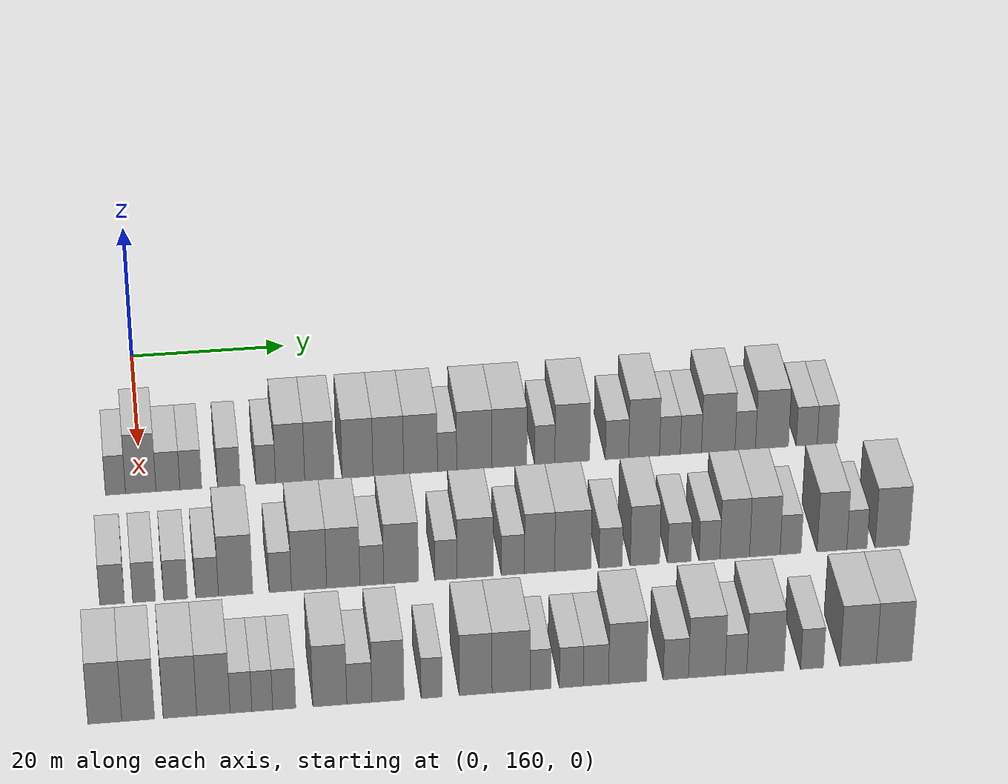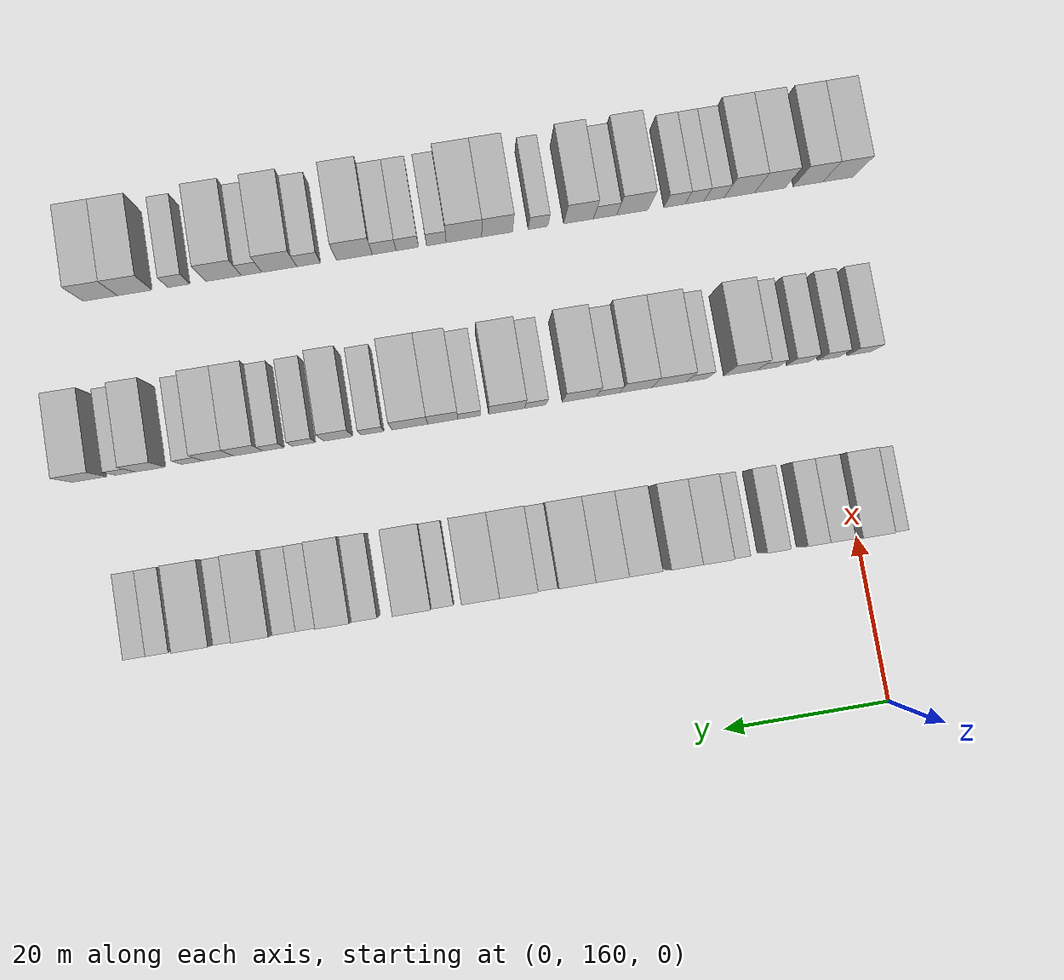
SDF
<sdf version="1.6">
 <world name="default">
  <model name="building_99">
   <static>1</static>
   <pose>25.0000 156.7002 0 0.000000 0.000000 0.000000</pose>
   <link name="link">
    <pose>0 0 3.00 0 0 0</pose>
    <collision name="collision"><geometry><box><size>10.0000 2.5004 6.0000</size></box></geometry></collision>
    <visual name="visual">
     <cast_shadows>0</cast_shadows>
     <geometry><box><size>10.0000 2.5004 6.0000</size></box></geometry>
     <material>
      <script>
       <uri>model://HANNAS_wall/materials/scripts</uri>
       <uri>model://HANNAS_wall/materials/textures</uri>
       <name>vrc/HANNAS_wall</name>
      </script>
     </material>
    </visual>
   </link>
  </model>
  <model name="building_100">
   <static>1</static>
   <pose>25.0000 159.8559 0 0.000000 0.000000 0.000000</pose>
   <link name="link">
    <pose>0 0 4.50 0 0 0</pose>
    <collision name="collision"><geometry><box><size>10.0000 3.8112 9.0000</size></box></geometry></collision>
    <visual name="visual">
     <cast_shadows>0</cast_shadows>
     <geometry><box><size>10.0000 3.8112 9.0000</size></box></geometry>
     <material>
      <script>
       <uri>model://HANNAS_wall/materials/scripts</uri>
       <uri>model://HANNAS_wall/materials/textures</uri>
       <name>vrc/HANNAS_wall</name>
      </script>
     </material>
    </visual>
   </link>
  </model>
  <model name="building_101">
   <static>1</static>
   <pose>25.0000 163.2554 0 0.000000 0.000000 0.000000</pose>
   <link name="link">
    <pose>0 0 3.00 0 0 0</pose>
    <collision name="collision"><geometry><box><size>10.0000 2.9878 6.0000</size></box></geometry></collision>
    <visual name="visual">
     <cast_shadows>0</cast_shadows>
     <geometry><box><size>10.0000 2.9878 6.0000</size></box></geometry>
     <material>
      <script>
       <uri>model://HANNAS_wall/materials/scripts</uri>
       <uri>model://HANNAS_wall/materials/textures</uri>
       <name>vrc/HANNAS_wall</name>
      </script>
     </material>
    </visual>
   </link>
  </model>
  <model name="building_102">
   <static>1</static>
   <pose>25.0000 166.1116 0 0.000000 0.000000 0.000000</pose>
   <link name="link">
    <pose>0 0 3.00 0 0 0</pose>
    <collision name="collision"><geometry><box><size>10.0000 2.7245 6.0000</size></box></geometry></collision>
    <visual name="visual">
     <cast_shadows>0</cast_shadows>
     <geometry><box><size>10.0000 2.7245 6.0000</size></box></geometry>
     <material>
      <script>
       <uri>model://HANNAS_wall/materials/scripts</uri>
       <uri>model://HANNAS_wall/materials/textures</uri>
       <name>vrc/HANNAS_wall</name>
      </script>
     </material>
    </visual>
   </link>
  </model>
  <model name="building_103">
   <static>1</static>
   <pose>25.0000 170.8859 0 0.000000 0.000000 0.000000</pose>
   <link name="link">
    <pose>0 0 3.00 0 0 0</pose>
    <collision name="collision"><geometry><box><size>10.0000 2.8243 6.0000</size></box></geometry></collision>
    <visual name="visual">
     <cast_shadows>0</cast_shadows>
     <geometry><box><size>10.0000 2.8243 6.0000</size></box></geometry>
     <material>
      <script>
       <uri>model://HANNAS_wall/materials/scripts</uri>
       <uri>model://HANNAS_wall/materials/textures</uri>
       <name>vrc/HANNAS_wall</name>
      </script>
     </material>
    </visual>
   </link>
  </model>
  <model name="building_104">
   <static>1</static>
   <pose>25.0000 175.5269 0 0.000000 0.000000 0.000000</pose>
   <link name="link">
    <pose>0 0 3.00 0 0 0</pose>
    <collision name="collision"><geometry><box><size>10.0000 2.4576 6.0000</size></box></geometry></collision>
    <visual name="visual">
     <cast_shadows>0</cast_shadows>
     <geometry><box><size>10.0000 2.4576 6.0000</size></box></geometry>
     <material>
      <script>
       <uri>model://HANNAS_wall/materials/scripts</uri>
       <uri>model://HANNAS_wall/materials/textures</uri>
       <name>vrc/HANNAS_wall</name>
      </script>
     </material>
    </visual>
   </link>
  </model>
  <model name="building_105">
   <static>1</static>
   <pose>25.0000 178.5931 0 0.000000 0.000000 0.000000</pose>
   <link name="link">
    <pose>0 0 4.50 0 0 0</pose>
    <collision name="collision"><geometry><box><size>10.0000 3.6749 9.0000</size></box></geometry></collision>
    <visual name="visual">
     <cast_shadows>0</cast_shadows>
     <geometry><box><size>10.0000 3.6749 9.0000</size></box></geometry>
     <material>
      <script>
       <uri>model://HANNAS_wall/materials/scripts</uri>
       <uri>model://HANNAS_wall/materials/textures</uri>
       <name>vrc/HANNAS_wall</name>
      </script>
     </material>
    </visual>
   </link>
  </model>
  <model name="building_106">
   <static>1</static>
   <pose>25.0000 182.2861 0 0.000000 0.000000 0.000000</pose>
   <link name="link">
    <pose>0 0 4.50 0 0 0</pose>
    <collision name="collision"><geometry><box><size>10.0000 3.7111 9.0000</size></box></geometry></collision>
    <visual name="visual">
     <cast_shadows>0</cast_shadows>
     <geometry><box><size>10.0000 3.7111 9.0000</size></box></geometry>
     <material>
      <script>
       <uri>model://HANNAS_wall/materials/scripts</uri>
       <uri>model://HANNAS_wall/materials/textures</uri>
       <name>vrc/HANNAS_wall</name>
      </script>
     </material>
    </visual>
   </link>
  </model>
  <model name="building_107">
   <static>1</static>
   <pose>25.0000 187.0937 0 0.000000 0.000000 0.000000</pose>
   <link name="link">
    <pose>0 0 4.50 0 0 0</pose>
    <collision name="collision"><geometry><box><size>10.0000 3.9042 9.0000</size></box></geometry></collision>
    <visual name="visual">
     <cast_shadows>0</cast_shadows>
     <geometry><box><size>10.0000 3.9042 9.0000</size></box></geometry>
     <material>
      <script>
       <uri>model://HANNAS_wall/materials/scripts</uri>
       <uri>model://HANNAS_wall/materials/textures</uri>
       <name>vrc/HANNAS_wall</name>
      </script>
     </material>
    </visual>
   </link>
  </model>
  <model name="building_108">
   <static>1</static>
   <pose>25.0000 190.9851 0 0.000000 0.000000 0.000000</pose>
   <link name="link">
    <pose>0 0 4.50 0 0 0</pose>
    <collision name="collision"><geometry><box><size>10.0000 3.8786 9.0000</size></box></geometry></collision>
    <visual name="visual">
     <cast_shadows>0</cast_shadows>
     <geometry><box><size>10.0000 3.8786 9.0000</size></box></geometry>
     <material>
      <script>
       <uri>model://HANNAS_wall/materials/scripts</uri>
       <uri>model://HANNAS_wall/materials/textures</uri>
       <name>vrc/HANNAS_wall</name>
      </script>
     </material>
    </visual>
   </link>
  </model>
  <model name="building_109">
   <static>1</static>
   <pose>25.0000 195.0670 0 0.000000 0.000000 0.000000</pose>
   <link name="link">
    <pose>0 0 4.50 0 0 0</pose>
    <collision name="collision"><geometry><box><size>10.0000 4.2852 9.0000</size></box></geometry></collision>
    <visual name="visual">
     <cast_shadows>0</cast_shadows>
     <geometry><box><size>10.0000 4.2852 9.0000</size></box></geometry>
     <material>
      <script>
       <uri>model://HANNAS_wall/materials/scripts</uri>
       <uri>model://HANNAS_wall/materials/textures</uri>
       <name>vrc/HANNAS_wall</name>
      </script>
     </material>
    </visual>
   </link>
  </model>
  <model name="building_110">
   <static>1</static>
   <pose>25.0000 198.4293 0 0.000000 0.000000 0.000000</pose>
   <link name="link">
    <pose>0 0 3.00 0 0 0</pose>
    <collision name="collision"><geometry><box><size>10.0000 2.4394 6.0000</size></box></geometry></collision>
    <visual name="visual">
     <cast_shadows>0</cast_shadows>
     <geometry><box><size>10.0000 2.4394 6.0000</size></box></geometry>
     <material>
      <script>
       <uri>model://HANNAS_wall/materials/scripts</uri>
       <uri>model://HANNAS_wall/materials/textures</uri>
       <name>vrc/HANNAS_wall</name>
      </script>
     </material>
    </visual>
   </link>
  </model>
  <model name="building_111">
   <static>1</static>
   <pose>25.0000 201.8912 0 0.000000 0.000000 0.000000</pose>
   <link name="link">
    <pose>0 0 4.50 0 0 0</pose>
    <collision name="collision"><geometry><box><size>10.0000 4.4845 9.0000</size></box></geometry></collision>
    <visual name="visual">
     <cast_shadows>0</cast_shadows>
     <geometry><box><size>10.0000 4.4845 9.0000</size></box></geometry>
     <material>
      <script>
       <uri>model://HANNAS_wall/materials/scripts</uri>
       <uri>model://HANNAS_wall/materials/textures</uri>
       <name>vrc/HANNAS_wall</name>
      </script>
     </material>
    </visual>
   </link>
  </model>
  <model name="building_112">
   <static>1</static>
   <pose>25.0000 206.3494 0 0.000000 0.000000 0.000000</pose>
   <link name="link">
    <pose>0 0 4.50 0 0 0</pose>
    <collision name="collision"><geometry><box><size>10.0000 4.4319 9.0000</size></box></geometry></collision>
    <visual name="visual">
     <cast_shadows>0</cast_shadows>
     <geometry><box><size>10.0000 4.4319 9.0000</size></box></geometry>
     <material>
      <script>
       <uri>model://HANNAS_wall/materials/scripts</uri>
       <uri>model://HANNAS_wall/materials/textures</uri>
       <name>vrc/HANNAS_wall</name>
      </script>
     </material>
    </visual>
   </link>
  </model>
  <model name="building_113">
   <static>1</static>
   <pose>25.0000 210.8501 0 0.000000 0.000000 0.000000</pose>
   <link name="link">
    <pose>0 0 3.00 0 0 0</pose>
    <collision name="collision"><geometry><box><size>10.0000 2.5695 6.0000</size></box></geometry></collision>
    <visual name="visual">
     <cast_shadows>0</cast_shadows>
     <geometry><box><size>10.0000 2.5695 6.0000</size></box></geometry>
     <material>
      <script>
       <uri>model://HANNAS_wall/materials/scripts</uri>
       <uri>model://HANNAS_wall/materials/textures</uri>
       <name>vrc/HANNAS_wall</name>
      </script>
     </material>
    </visual>
   </link>
  </model>
  <model name="building_114">
   <static>1</static>
   <pose>25.0000 214.3579 0 0.000000 0.000000 0.000000</pose>
   <link name="link">
    <pose>0 0 4.50 0 0 0</pose>
    <collision name="collision"><geometry><box><size>10.0000 4.4461 9.0000</size></box></geometry></collision>
    <visual name="visual">
     <cast_shadows>0</cast_shadows>
     <geometry><box><size>10.0000 4.4461 9.0000</size></box></geometry>
     <material>
      <script>
       <uri>model://HANNAS_wall/materials/scripts</uri>
       <uri>model://HANNAS_wall/materials/textures</uri>
       <name>vrc/HANNAS_wall</name>
      </script>
     </material>
    </visual>
   </link>
  </model>
  <model name="building_115">
   <static>1</static>
   <pose>25.0000 220.0796 0 0.000000 0.000000 0.000000</pose>
   <link name="link">
    <pose>0 0 3.00 0 0 0</pose>
    <collision name="collision"><geometry><box><size>10.0000 2.9972 6.0000</size></box></geometry></collision>
    <visual name="visual">
     <cast_shadows>0</cast_shadows>
     <geometry><box><size>10.0000 2.9972 6.0000</size></box></geometry>
     <material>
      <script>
       <uri>model://HANNAS_wall/materials/scripts</uri>
       <uri>model://HANNAS_wall/materials/textures</uri>
       <name>vrc/HANNAS_wall</name>
      </script>
     </material>
    </visual>
   </link>
  </model>
  <model name="building_116">
   <static>1</static>
   <pose>25.0000 223.5503 0 0.000000 0.000000 0.000000</pose>
   <link name="link">
    <pose>0 0 4.50 0 0 0</pose>
    <collision name="collision"><geometry><box><size>10.0000 3.9442 9.0000</size></box></geometry></collision>
    <visual name="visual">
     <cast_shadows>0</cast_shadows>
     <geometry><box><size>10.0000 3.9442 9.0000</size></box></geometry>
     <material>
      <script>
       <uri>model://HANNAS_wall/materials/scripts</uri>
       <uri>model://HANNAS_wall/materials/textures</uri>
       <name>vrc/HANNAS_wall</name>
      </script>
     </material>
    </visual>
   </link>
  </model>
  <model name="building_117">
   <static>1</static>
   <pose>25.0000 226.8522 0 0.000000 0.000000 0.000000</pose>
   <link name="link">
    <pose>0 0 3.00 0 0 0</pose>
    <collision name="collision"><geometry><box><size>10.0000 2.6597 6.0000</size></box></geometry></collision>
    <visual name="visual">
     <cast_shadows>0</cast_shadows>
     <geometry><box><size>10.0000 2.6597 6.0000</size></box></geometry>
     <material>
      <script>
       <uri>model://HANNAS_wall/materials/scripts</uri>
       <uri>model://HANNAS_wall/materials/textures</uri>
       <name>vrc/HANNAS_wall</name>
      </script>
     </material>
    </visual>
   </link>
  </model>
  <model name="building_118">
   <static>1</static>
   <pose>25.0000 229.5475 0 0.000000 0.000000 0.000000</pose>
   <link name="link">
    <pose>0 0 3.00 0 0 0</pose>
    <collision name="collision"><geometry><box><size>10.0000 2.7309 6.0000</size></box></geometry></collision>
    <visual name="visual">
     <cast_shadows>0</cast_shadows>
     <geometry><box><size>10.0000 2.7309 6.0000</size></box></geometry>
     <material>
      <script>
       <uri>model://HANNAS_wall/materials/scripts</uri>
       <uri>model://HANNAS_wall/materials/textures</uri>
       <name>vrc/HANNAS_wall</name>
      </script>
     </material>
    </visual>
   </link>
  </model>
  <model name="building_119">
   <static>1</static>
   <pose>25.0000 233.0678 0 0.000000 0.000000 0.000000</pose>
   <link name="link">
    <pose>0 0 4.50 0 0 0</pose>
    <collision name="collision"><geometry><box><size>10.0000 4.3097 9.0000</size></box></geometry></collision>
    <visual name="visual">
     <cast_shadows>0</cast_shadows>
     <geometry><box><size>10.0000 4.3097 9.0000</size></box></geometry>
     <material>
      <script>
       <uri>model://HANNAS_wall/materials/scripts</uri>
       <uri>model://HANNAS_wall/materials/textures</uri>
       <name>vrc/HANNAS_wall</name>
      </script>
     </material>
    </visual>
   </link>
  </model>
  <model name="building_120">
   <static>1</static>
   <pose>25.0000 236.5413 0 0.000000 0.000000 0.000000</pose>
   <link name="link">
    <pose>0 0 3.00 0 0 0</pose>
    <collision name="collision"><geometry><box><size>10.0000 2.6375 6.0000</size></box></geometry></collision>
    <visual name="visual">
     <cast_shadows>0</cast_shadows>
     <geometry><box><size>10.0000 2.6375 6.0000</size></box></geometry>
     <material>
      <script>
       <uri>model://HANNAS_wall/materials/scripts</uri>
       <uri>model://HANNAS_wall/materials/textures</uri>
       <name>vrc/HANNAS_wall</name>
      </script>
     </material>
    </visual>
   </link>
  </model>
  <model name="building_121">
   <static>1</static>
   <pose>25.0000 239.9875 0 0.000000 0.000000 0.000000</pose>
   <link name="link">
    <pose>0 0 4.50 0 0 0</pose>
    <collision name="collision"><geometry><box><size>10.0000 4.2548 9.0000</size></box></geometry></collision>
    <visual name="visual">
     <cast_shadows>0</cast_shadows>
     <geometry><box><size>10.0000 4.2548 9.0000</size></box></geometry>
     <material>
      <script>
       <uri>model://HANNAS_wall/materials/scripts</uri>
       <uri>model://HANNAS_wall/materials/textures</uri>
       <name>vrc/HANNAS_wall</name>
      </script>
     </material>
    </visual>
   </link>
  </model>
  <model name="building_122">
   <static>1</static>
   <pose>25.0000 244.4672 0 0.000000 0.000000 0.000000</pose>
   <link name="link">
    <pose>0 0 3.00 0 0 0</pose>
    <collision name="collision"><geometry><box><size>10.0000 2.7047 6.0000</size></box></geometry></collision>
    <visual name="visual">
     <cast_shadows>0</cast_shadows>
     <geometry><box><size>10.0000 2.7047 6.0000</size></box></geometry>
     <material>
      <script>
       <uri>model://HANNAS_wall/materials/scripts</uri>
       <uri>model://HANNAS_wall/materials/textures</uri>
       <name>vrc/HANNAS_wall</name>
      </script>
     </material>
    </visual>
   </link>
  </model>
  <model name="building_123">
   <static>1</static>
   <pose>25.0000 247.1309 0 0.000000 0.000000 0.000000</pose>
   <link name="link">
    <pose>0 0 3.00 0 0 0</pose>
    <collision name="collision"><geometry><box><size>10.0000 2.6227 6.0000</size></box></geometry></collision>
    <visual name="visual">
     <cast_shadows>0</cast_shadows>
     <geometry><box><size>10.0000 2.6227 6.0000</size></box></geometry>
     <material>
      <script>
       <uri>model://HANNAS_wall/materials/scripts</uri>
       <uri>model://HANNAS_wall/materials/textures</uri>
       <name>vrc/HANNAS_wall</name>
      </script>
     </material>
    </visual>
   </link>
  </model>
  <model name="building_219">
   <static>1</static>
   <pose>47.0000 155.4432 0 0.000000 0.000000 0.000000</pose>
   <link name="link">
    <pose>0 0 3.00 0 0 0</pose>
    <collision name="collision"><geometry><box><size>10.0000 2.9692 6.0000</size></box></geometry></collision>
    <visual name="visual">
     <cast_shadows>0</cast_shadows>
     <geometry><box><size>10.0000 2.9692 6.0000</size></box></geometry>
     <material>
      <script>
       <uri>model://HANNAS_wall/materials/scripts</uri>
       <uri>model://HANNAS_wall/materials/textures</uri>
       <name>vrc/HANNAS_wall</name>
      </script>
     </material>
    </visual>
   </link>
  </model>
  <model name="building_220">
   <static>1</static>
   <pose>47.0000 159.2951 0 0.000000 0.000000 0.000000</pose>
   <link name="link">
    <pose>0 0 3.00 0 0 0</pose>
    <collision name="collision"><geometry><box><size>10.0000 2.7347 6.0000</size></box></geometry></collision>
    <visual name="visual">
     <cast_shadows>0</cast_shadows>
     <geometry><box><size>10.0000 2.7347 6.0000</size></box></geometry>
     <material>
      <script>
       <uri>model://HANNAS_wall/materials/scripts</uri>
       <uri>model://HANNAS_wall/materials/textures</uri>
       <name>vrc/HANNAS_wall</name>
      </script>
     </material>
    </visual>
   </link>
  </model>
  <model name="building_221">
   <static>1</static>
   <pose>47.0000 163.0942 0 0.000000 0.000000 0.000000</pose>
   <link name="link">
    <pose>0 0 3.00 0 0 0</pose>
    <collision name="collision"><geometry><box><size>10.0000 2.8635 6.0000</size></box></geometry></collision>
    <visual name="visual">
     <cast_shadows>0</cast_shadows>
     <geometry><box><size>10.0000 2.8635 6.0000</size></box></geometry>
     <material>
      <script>
       <uri>model://HANNAS_wall/materials/scripts</uri>
       <uri>model://HANNAS_wall/materials/textures</uri>
       <name>vrc/HANNAS_wall</name>
      </script>
     </material>
    </visual>
   </link>
  </model>
  <model name="building_222">
   <static>1</static>
   <pose>47.0000 166.8901 0 0.000000 0.000000 0.000000</pose>
   <link name="link">
    <pose>0 0 3.00 0 0 0</pose>
    <collision name="collision"><geometry><box><size>10.0000 2.7281 6.0000</size></box></geometry></collision>
    <visual name="visual">
     <cast_shadows>0</cast_shadows>
     <geometry><box><size>10.0000 2.7281 6.0000</size></box></geometry>
     <material>
      <script>
       <uri>model://HANNAS_wall/materials/scripts</uri>
       <uri>model://HANNAS_wall/materials/textures</uri>
       <name>vrc/HANNAS_wall</name>
      </script>
     </material>
    </visual>
   </link>
  </model>
  <model name="building_223">
   <static>1</static>
   <pose>47.0000 170.3268 0 0.000000 0.000000 0.000000</pose>
   <link name="link">
    <pose>0 0 4.50 0 0 0</pose>
    <collision name="collision"><geometry><box><size>10.0000 4.1452 9.0000</size></box></geometry></collision>
    <visual name="visual">
     <cast_shadows>0</cast_shadows>
     <geometry><box><size>10.0000 4.1452 9.0000</size></box></geometry>
     <material>
      <script>
       <uri>model://HANNAS_wall/materials/scripts</uri>
       <uri>model://HANNAS_wall/materials/textures</uri>
       <name>vrc/HANNAS_wall</name>
      </script>
     </material>
    </visual>
   </link>
  </model>
  <model name="building_224">
   <static>1</static>
   <pose>47.0000 175.7468 0 0.000000 0.000000 0.000000</pose>
   <link name="link">
    <pose>0 0 3.00 0 0 0</pose>
    <collision name="collision"><geometry><box><size>10.0000 2.6948 6.0000</size></box></geometry></collision>
    <visual name="visual">
     <cast_shadows>0</cast_shadows>
     <geometry><box><size>10.0000 2.6948 6.0000</size></box></geometry>
     <material>
      <script>
       <uri>model://HANNAS_wall/materials/scripts</uri>
       <uri>model://HANNAS_wall/materials/textures</uri>
       <name>vrc/HANNAS_wall</name>
      </script>
     </material>
    </visual>
   </link>
  </model>
  <model name="building_225">
   <static>1</static>
   <pose>47.0000 179.2345 0 0.000000 0.000000 0.000000</pose>
   <link name="link">
    <pose>0 0 4.50 0 0 0</pose>
    <collision name="collision"><geometry><box><size>10.0000 4.2806 9.0000</size></box></geometry></collision>
    <visual name="visual">
     <cast_shadows>0</cast_shadows>
     <geometry><box><size>10.0000 4.2806 9.0000</size></box></geometry>
     <material>
      <script>
       <uri>model://HANNAS_wall/materials/scripts</uri>
       <uri>model://HANNAS_wall/materials/textures</uri>
       <name>vrc/HANNAS_wall</name>
      </script>
     </material>
    </visual>
   </link>
  </model>
  <model name="building_226">
   <static>1</static>
   <pose>47.0000 183.3904 0 0.000000 0.000000 0.000000</pose>
   <link name="link">
    <pose>0 0 4.50 0 0 0</pose>
    <collision name="collision"><geometry><box><size>10.0000 4.0311 9.0000</size></box></geometry></collision>
    <visual name="visual">
     <cast_shadows>0</cast_shadows>
     <geometry><box><size>10.0000 4.0311 9.0000</size></box></geometry>
     <material>
      <script>
       <uri>model://HANNAS_wall/materials/scripts</uri>
       <uri>model://HANNAS_wall/materials/textures</uri>
       <name>vrc/HANNAS_wall</name>
      </script>
     </material>
    </visual>
   </link>
  </model>
  <model name="building_227">
   <static>1</static>
   <pose>47.0000 186.8630 0 0.000000 0.000000 0.000000</pose>
   <link name="link">
    <pose>0 0 3.00 0 0 0</pose>
    <collision name="collision"><geometry><box><size>10.0000 2.9141 6.0000</size></box></geometry></collision>
    <visual name="visual">
     <cast_shadows>0</cast_shadows>
     <geometry><box><size>10.0000 2.9141 6.0000</size></box></geometry>
     <material>
      <script>
       <uri>model://HANNAS_wall/materials/scripts</uri>
       <uri>model://HANNAS_wall/materials/textures</uri>
       <name>vrc/HANNAS_wall</name>
      </script>
     </material>
    </visual>
   </link>
  </model>
  <model name="building_228">
   <static>1</static>
   <pose>47.0000 190.4322 0 0.000000 0.000000 0.000000</pose>
   <link name="link">
    <pose>0 0 4.50 0 0 0</pose>
    <collision name="collision"><geometry><box><size>10.0000 4.2245 9.0000</size></box></geometry></collision>
    <visual name="visual">
     <cast_shadows>0</cast_shadows>
     <geometry><box><size>10.0000 4.2245 9.0000</size></box></geometry>
     <material>
      <script>
       <uri>model://HANNAS_wall/materials/scripts</uri>
       <uri>model://HANNAS_wall/materials/textures</uri>
       <name>vrc/HANNAS_wall</name>
      </script>
     </material>
    </visual>
   </link>
  </model>
  <model name="building_229">
   <static>1</static>
   <pose>47.0000 195.8964 0 0.000000 0.000000 0.000000</pose>
   <link name="link">
    <pose>0 0 3.00 0 0 0</pose>
    <collision name="collision"><geometry><box><size>10.0000 2.7037 6.0000</size></box></geometry></collision>
    <visual name="visual">
     <cast_shadows>0</cast_shadows>
     <geometry><box><size>10.0000 2.7037 6.0000</size></box></geometry>
     <material>
      <script>
       <uri>model://HANNAS_wall/materials/scripts</uri>
       <uri>model://HANNAS_wall/materials/textures</uri>
       <name>vrc/HANNAS_wall</name>
      </script>
     </material>
    </visual>
   </link>
  </model>
  <model name="building_230">
   <static>1</static>
   <pose>47.0000 199.4681 0 0.000000 0.000000 0.000000</pose>
   <link name="link">
    <pose>0 0 4.50 0 0 0</pose>
    <collision name="collision"><geometry><box><size>10.0000 4.4397 9.0000</size></box></geometry></collision>
    <visual name="visual">
     <cast_shadows>0</cast_shadows>
     <geometry><box><size>10.0000 4.4397 9.0000</size></box></geometry>
     <material>
      <script>
       <uri>model://HANNAS_wall/materials/scripts</uri>
       <uri>model://HANNAS_wall/materials/textures</uri>
       <name>vrc/HANNAS_wall</name>
      </script>
     </material>
    </visual>
   </link>
  </model>
  <model name="building_231">
   <static>1</static>
   <pose>47.0000 204.1017 0 0.000000 0.000000 0.000000</pose>
   <link name="link">
    <pose>0 0 3.00 0 0 0</pose>
    <collision name="collision"><geometry><box><size>10.0000 2.8274 6.0000</size></box></geometry></collision>
    <visual name="visual">
     <cast_shadows>0</cast_shadows>
     <geometry><box><size>10.0000 2.8274 6.0000</size></box></geometry>
     <material>
      <script>
       <uri>model://HANNAS_wall/materials/scripts</uri>
       <uri>model://HANNAS_wall/materials/textures</uri>
       <name>vrc/HANNAS_wall</name>
      </script>
     </material>
    </visual>
   </link>
  </model>
  <model name="building_232">
   <static>1</static>
   <pose>47.0000 207.3681 0 0.000000 0.000000 0.000000</pose>
   <link name="link">
    <pose>0 0 4.50 0 0 0</pose>
    <collision name="collision"><geometry><box><size>10.0000 3.7054 9.0000</size></box></geometry></collision>
    <visual name="visual">
     <cast_shadows>0</cast_shadows>
     <geometry><box><size>10.0000 3.7054 9.0000</size></box></geometry>
     <material>
      <script>
       <uri>model://HANNAS_wall/materials/scripts</uri>
       <uri>model://HANNAS_wall/materials/textures</uri>
       <name>vrc/HANNAS_wall</name>
      </script>
     </material>
    </visual>
   </link>
  </model>
  <model name="building_233">
   <static>1</static>
   <pose>47.0000 211.4413 0 0.000000 0.000000 0.000000</pose>
   <link name="link">
    <pose>0 0 4.50 0 0 0</pose>
    <collision name="collision"><geometry><box><size>10.0000 4.4409 9.0000</size></box></geometry></collision>
    <visual name="visual">
     <cast_shadows>0</cast_shadows>
     <geometry><box><size>10.0000 4.4409 9.0000</size></box></geometry>
     <material>
      <script>
       <uri>model://HANNAS_wall/materials/scripts</uri>
       <uri>model://HANNAS_wall/materials/textures</uri>
       <name>vrc/HANNAS_wall</name>
      </script>
     </material>
    </visual>
   </link>
  </model>
  <model name="building_234">
   <static>1</static>
   <pose>47.0000 216.0878 0 0.000000 0.000000 0.000000</pose>
   <link name="link">
    <pose>0 0 3.00 0 0 0</pose>
    <collision name="collision"><geometry><box><size>10.0000 2.8521 6.0000</size></box></geometry></collision>
    <visual name="visual">
     <cast_shadows>0</cast_shadows>
     <geometry><box><size>10.0000 2.8521 6.0000</size></box></geometry>
     <material>
      <script>
       <uri>model://HANNAS_wall/materials/scripts</uri>
       <uri>model://HANNAS_wall/materials/textures</uri>
       <name>vrc/HANNAS_wall</name>
      </script>
     </material>
    </visual>
   </link>
  </model>
  <model name="building_235">
   <static>1</static>
   <pose>47.0000 220.3192 0 0.000000 0.000000 0.000000</pose>
   <link name="link">
    <pose>0 0 4.50 0 0 0</pose>
    <collision name="collision"><geometry><box><size>10.0000 3.6106 9.0000</size></box></geometry></collision>
    <visual name="visual">
     <cast_shadows>0</cast_shadows>
     <geometry><box><size>10.0000 3.6106 9.0000</size></box></geometry>
     <material>
      <script>
       <uri>model://HANNAS_wall/materials/scripts</uri>
       <uri>model://HANNAS_wall/materials/textures</uri>
       <name>vrc/HANNAS_wall</name>
      </script>
     </material>
    </visual>
   </link>
  </model>
  <model name="building_236">
   <static>1</static>
   <pose>47.0000 224.5688 0 0.000000 0.000000 0.000000</pose>
   <link name="link">
    <pose>0 0 3.00 0 0 0</pose>
    <collision name="collision"><geometry><box><size>10.0000 2.8887 6.0000</size></box></geometry></collision>
    <visual name="visual">
     <cast_shadows>0</cast_shadows>
     <geometry><box><size>10.0000 2.8887 6.0000</size></box></geometry>
     <material>
      <script>
       <uri>model://HANNAS_wall/materials/scripts</uri>
       <uri>model://HANNAS_wall/materials/textures</uri>
       <name>vrc/HANNAS_wall</name>
      </script>
     </material>
    </visual>
   </link>
  </model>
  <model name="building_237">
   <static>1</static>
   <pose>47.0000 228.3038 0 0.000000 0.000000 0.000000</pose>
   <link name="link">
    <pose>0 0 3.00 0 0 0</pose>
    <collision name="collision"><geometry><box><size>10.0000 2.5812 6.0000</size></box></geometry></collision>
    <visual name="visual">
     <cast_shadows>0</cast_shadows>
     <geometry><box><size>10.0000 2.5812 6.0000</size></box></geometry>
     <material>
      <script>
       <uri>model://HANNAS_wall/materials/scripts</uri>
       <uri>model://HANNAS_wall/materials/textures</uri>
       <name>vrc/HANNAS_wall</name>
      </script>
     </material>
    </visual>
   </link>
  </model>
  <model name="building_238">
   <static>1</static>
   <pose>47.0000 231.4331 0 0.000000 0.000000 0.000000</pose>
   <link name="link">
    <pose>0 0 4.50 0 0 0</pose>
    <collision name="collision"><geometry><box><size>10.0000 3.6776 9.0000</size></box></geometry></collision>
    <visual name="visual">
     <cast_shadows>0</cast_shadows>
     <geometry><box><size>10.0000 3.6776 9.0000</size></box></geometry>
     <material>
      <script>
       <uri>model://HANNAS_wall/materials/scripts</uri>
       <uri>model://HANNAS_wall/materials/textures</uri>
       <name>vrc/HANNAS_wall</name>
      </script>
     </material>
    </visual>
   </link>
  </model>
  <model name="building_239">
   <static>1</static>
   <pose>47.0000 235.1709 0 0.000000 0.000000 0.000000</pose>
   <link name="link">
    <pose>0 0 4.50 0 0 0</pose>
    <collision name="collision"><geometry><box><size>10.0000 3.7980 9.0000</size></box></geometry></collision>
    <visual name="visual">
     <cast_shadows>0</cast_shadows>
     <geometry><box><size>10.0000 3.7980 9.0000</size></box></geometry>
     <material>
      <script>
       <uri>model://HANNAS_wall/materials/scripts</uri>
       <uri>model://HANNAS_wall/materials/textures</uri>
       <name>vrc/HANNAS_wall</name>
      </script>
     </material>
    </visual>
   </link>
  </model>
  <model name="building_240">
   <static>1</static>
   <pose>47.0000 238.3701 0 0.000000 0.000000 0.000000</pose>
   <link name="link">
    <pose>0 0 3.00 0 0 0</pose>
    <collision name="collision"><geometry><box><size>10.0000 2.6005 6.0000</size></box></geometry></collision>
    <visual name="visual">
     <cast_shadows>0</cast_shadows>
     <geometry><box><size>10.0000 2.6005 6.0000</size></box></geometry>
     <material>
      <script>
       <uri>model://HANNAS_wall/materials/scripts</uri>
       <uri>model://HANNAS_wall/materials/textures</uri>
       <name>vrc/HANNAS_wall</name>
      </script>
     </material>
    </visual>
   </link>
  </model>
  <model name="building_241">
   <static>1</static>
   <pose>47.0000 243.5212 0 0.000000 0.000000 0.000000</pose>
   <link name="link">
    <pose>0 0 4.50 0 0 0</pose>
    <collision name="collision"><geometry><box><size>10.0000 3.7017 9.0000</size></box></geometry></collision>
    <visual name="visual">
     <cast_shadows>0</cast_shadows>
     <geometry><box><size>10.0000 3.7017 9.0000</size></box></geometry>
     <material>
      <script>
       <uri>model://HANNAS_wall/materials/scripts</uri>
       <uri>model://HANNAS_wall/materials/textures</uri>
       <name>vrc/HANNAS_wall</name>
      </script>
     </material>
    </visual>
   </link>
  </model>
  <model name="building_242">
   <static>1</static>
   <pose>47.0000 246.6331 0 0.000000 0.000000 0.000000</pose>
   <link name="link">
    <pose>0 0 3.00 0 0 0</pose>
    <collision name="collision"><geometry><box><size>10.0000 2.5220 6.0000</size></box></geometry></collision>
    <visual name="visual">
     <cast_shadows>0</cast_shadows>
     <geometry><box><size>10.0000 2.5220 6.0000</size></box></geometry>
     <material>
      <script>
       <uri>model://HANNAS_wall/materials/scripts</uri>
       <uri>model://HANNAS_wall/materials/textures</uri>
       <name>vrc/HANNAS_wall</name>
      </script>
     </material>
    </visual>
   </link>
  </model>
  <model name="building_243">
   <static>1</static>
   <pose>47.0000 251.0231 0 0.000000 0.000000 0.000000</pose>
   <link name="link">
    <pose>0 0 4.50 0 0 0</pose>
    <collision name="collision"><geometry><box><size>10.0000 4.2579 9.0000</size></box></geometry></collision>
    <visual name="visual">
     <cast_shadows>0</cast_shadows>
     <geometry><box><size>10.0000 4.2579 9.0000</size></box></geometry>
     <material>
      <script>
       <uri>model://HANNAS_wall/materials/scripts</uri>
       <uri>model://HANNAS_wall/materials/textures</uri>
       <name>vrc/HANNAS_wall</name>
      </script>
     </material>
    </visual>
   </link>
  </model>
  <model name="building_346">
   <static>1</static>
   <pose>69.0000 153.7776 0 0.000000 0.000000 0.000000</pose>
   <link name="link">
    <pose>0 0 4.50 0 0 0</pose>
    <collision name="collision"><geometry><box><size>10.0000 3.9097 9.0000</size></box></geometry></collision>
    <visual name="visual">
     <cast_shadows>0</cast_shadows>
     <geometry><box><size>10.0000 3.9097 9.0000</size></box></geometry>
     <material>
      <script>
       <uri>model://HANNAS_wall/materials/scripts</uri>
       <uri>model://HANNAS_wall/materials/textures</uri>
       <name>vrc/HANNAS_wall</name>
      </script>
     </material>
    </visual>
   </link>
  </model>
  <model name="building_347">
   <static>1</static>
   <pose>69.0000 157.6245 0 0.000000 0.000000 0.000000</pose>
   <link name="link">
    <pose>0 0 4.50 0 0 0</pose>
    <collision name="collision"><geometry><box><size>10.0000 3.7841 9.0000</size></box></geometry></collision>
    <visual name="visual">
     <cast_shadows>0</cast_shadows>
     <geometry><box><size>10.0000 3.7841 9.0000</size></box></geometry>
     <material>
      <script>
       <uri>model://HANNAS_wall/materials/scripts</uri>
       <uri>model://HANNAS_wall/materials/textures</uri>
       <name>vrc/HANNAS_wall</name>
      </script>
     </material>
    </visual>
   </link>
  </model>
  <model name="building_348">
   <static>1</static>
   <pose>69.0000 162.4647 0 0.000000 0.000000 0.000000</pose>
   <link name="link">
    <pose>0 0 4.50 0 0 0</pose>
    <collision name="collision"><geometry><box><size>10.0000 3.8965 9.0000</size></box></geometry></collision>
    <visual name="visual">
     <cast_shadows>0</cast_shadows>
     <geometry><box><size>10.0000 3.8965 9.0000</size></box></geometry>
     <material>
      <script>
       <uri>model://HANNAS_wall/materials/scripts</uri>
       <uri>model://HANNAS_wall/materials/textures</uri>
       <name>vrc/HANNAS_wall</name>
      </script>
     </material>
    </visual>
   </link>
  </model>
  <model name="building_349">
   <static>1</static>
   <pose>69.0000 166.3500 0 0.000000 0.000000 0.000000</pose>
   <link name="link">
    <pose>0 0 4.50 0 0 0</pose>
    <collision name="collision"><geometry><box><size>10.0000 3.8741 9.0000</size></box></geometry></collision>
    <visual name="visual">
     <cast_shadows>0</cast_shadows>
     <geometry><box><size>10.0000 3.8741 9.0000</size></box></geometry>
     <material>
      <script>
       <uri>model://HANNAS_wall/materials/scripts</uri>
       <uri>model://HANNAS_wall/materials/textures</uri>
       <name>vrc/HANNAS_wall</name>
      </script>
     </material>
    </visual>
   </link>
  </model>
  <model name="building_350">
   <static>1</static>
   <pose>69.0000 169.5529 0 0.000000 0.000000 0.000000</pose>
   <link name="link">
    <pose>0 0 3.00 0 0 0</pose>
    <collision name="collision"><geometry><box><size>10.0000 2.5316 6.0000</size></box></geometry></collision>
    <visual name="visual">
     <cast_shadows>0</cast_shadows>
     <geometry><box><size>10.0000 2.5316 6.0000</size></box></geometry>
     <material>
      <script>
       <uri>model://HANNAS_wall/materials/scripts</uri>
       <uri>model://HANNAS_wall/materials/textures</uri>
       <name>vrc/HANNAS_wall</name>
      </script>
     </material>
    </visual>
   </link>
  </model>
  <model name="building_351">
   <static>1</static>
   <pose>69.0000 172.0296 0 0.000000 0.000000 0.000000</pose>
   <link name="link">
    <pose>0 0 3.00 0 0 0</pose>
    <collision name="collision"><geometry><box><size>10.0000 2.4219 6.0000</size></box></geometry></collision>
    <visual name="visual">
     <cast_shadows>0</cast_shadows>
     <geometry><box><size>10.0000 2.4219 6.0000</size></box></geometry>
     <material>
      <script>
       <uri>model://HANNAS_wall/materials/scripts</uri>
       <uri>model://HANNAS_wall/materials/textures</uri>
       <name>vrc/HANNAS_wall</name>
      </script>
     </material>
    </visual>
   </link>
  </model>
  <model name="building_352">
   <static>1</static>
   <pose>69.0000 174.5844 0 0.000000 0.000000 0.000000</pose>
   <link name="link">
    <pose>0 0 3.00 0 0 0</pose>
    <collision name="collision"><geometry><box><size>10.0000 2.6877 6.0000</size></box></geometry></collision>
    <visual name="visual">
     <cast_shadows>0</cast_shadows>
     <geometry><box><size>10.0000 2.6877 6.0000</size></box></geometry>
     <material>
      <script>
       <uri>model://HANNAS_wall/materials/scripts</uri>
       <uri>model://HANNAS_wall/materials/textures</uri>
       <name>vrc/HANNAS_wall</name>
      </script>
     </material>
    </visual>
   </link>
  </model>
  <model name="building_353">
   <static>1</static>
   <pose>69.0000 179.9124 0 0.000000 0.000000 0.000000</pose>
   <link name="link">
    <pose>0 0 4.50 0 0 0</pose>
    <collision name="collision"><geometry><box><size>10.0000 3.9684 9.0000</size></box></geometry></collision>
    <visual name="visual">
     <cast_shadows>0</cast_shadows>
     <geometry><box><size>10.0000 3.9684 9.0000</size></box></geometry>
     <material>
      <script>
       <uri>model://HANNAS_wall/materials/scripts</uri>
       <uri>model://HANNAS_wall/materials/textures</uri>
       <name>vrc/HANNAS_wall</name>
      </script>
     </material>
    </visual>
   </link>
  </model>
  <model name="building_354">
   <static>1</static>
   <pose>69.0000 183.3662 0 0.000000 0.000000 0.000000</pose>
   <link name="link">
    <pose>0 0 3.00 0 0 0</pose>
    <collision name="collision"><geometry><box><size>10.0000 2.9392 6.0000</size></box></geometry></collision>
    <visual name="visual">
     <cast_shadows>0</cast_shadows>
     <geometry><box><size>10.0000 2.9392 6.0000</size></box></geometry>
     <material>
      <script>
       <uri>model://HANNAS_wall/materials/scripts</uri>
       <uri>model://HANNAS_wall/materials/textures</uri>
       <name>vrc/HANNAS_wall</name>
      </script>
     </material>
    </visual>
   </link>
  </model>
  <model name="building_355">
   <static>1</static>
   <pose>69.0000 186.7160 0 0.000000 0.000000 0.000000</pose>
   <link name="link">
    <pose>0 0 4.50 0 0 0</pose>
    <collision name="collision"><geometry><box><size>10.0000 3.7603 9.0000</size></box></geometry></collision>
    <visual name="visual">
     <cast_shadows>0</cast_shadows>
     <geometry><box><size>10.0000 3.7603 9.0000</size></box></geometry>
     <material>
      <script>
       <uri>model://HANNAS_wall/materials/scripts</uri>
       <uri>model://HANNAS_wall/materials/textures</uri>
       <name>vrc/HANNAS_wall</name>
      </script>
     </material>
    </visual>
   </link>
  </model>
  <model name="building_356">
   <static>1</static>
   <pose>69.0000 191.8330 0 0.000000 0.000000 0.000000</pose>
   <link name="link">
    <pose>0 0 3.00 0 0 0</pose>
    <collision name="collision"><geometry><box><size>10.0000 2.4739 6.0000</size></box></geometry></collision>
    <visual name="visual">
     <cast_shadows>0</cast_shadows>
     <geometry><box><size>10.0000 2.4739 6.0000</size></box></geometry>
     <material>
      <script>
       <uri>model://HANNAS_wall/materials/scripts</uri>
       <uri>model://HANNAS_wall/materials/textures</uri>
       <name>vrc/HANNAS_wall</name>
      </script>
     </material>
    </visual>
   </link>
  </model>
  <model name="building_357">
   <static>1</static>
   <pose>69.0000 197.0046 0 0.000000 0.000000 0.000000</pose>
   <link name="link">
    <pose>0 0 4.50 0 0 0</pose>
    <collision name="collision"><geometry><box><size>10.0000 3.8693 9.0000</size></box></geometry></collision>
    <visual name="visual">
     <cast_shadows>0</cast_shadows>
     <geometry><box><size>10.0000 3.8693 9.0000</size></box></geometry>
     <material>
      <script>
       <uri>model://HANNAS_wall/materials/scripts</uri>
       <uri>model://HANNAS_wall/materials/textures</uri>
       <name>vrc/HANNAS_wall</name>
      </script>
     </material>
    </visual>
   </link>
  </model>
  <model name="building_358">
   <static>1</static>
   <pose>69.0000 201.1728 0 0.000000 0.000000 0.000000</pose>
   <link name="link">
    <pose>0 0 4.50 0 0 0</pose>
    <collision name="collision"><geometry><box><size>10.0000 4.4671 9.0000</size></box></geometry></collision>
    <visual name="visual">
     <cast_shadows>0</cast_shadows>
     <geometry><box><size>10.0000 4.4671 9.0000</size></box></geometry>
     <material>
      <script>
       <uri>model://HANNAS_wall/materials/scripts</uri>
       <uri>model://HANNAS_wall/materials/textures</uri>
       <name>vrc/HANNAS_wall</name>
      </script>
     </material>
    </visual>
   </link>
  </model>
  <model name="building_359">
   <static>1</static>
   <pose>69.0000 204.6404 0 0.000000 0.000000 0.000000</pose>
   <link name="link">
    <pose>0 0 3.00 0 0 0</pose>
    <collision name="collision"><geometry><box><size>10.0000 2.4681 6.0000</size></box></geometry></collision>
    <visual name="visual">
     <cast_shadows>0</cast_shadows>
     <geometry><box><size>10.0000 2.4681 6.0000</size></box></geometry>
     <material>
      <script>
       <uri>model://HANNAS_wall/materials/scripts</uri>
       <uri>model://HANNAS_wall/materials/textures</uri>
       <name>vrc/HANNAS_wall</name>
      </script>
     </material>
    </visual>
   </link>
  </model>
  <model name="building_360">
   <static>1</static>
   <pose>69.0000 208.2884 0 0.000000 0.000000 0.000000</pose>
   <link name="link">
    <pose>0 0 3.00 0 0 0</pose>
    <collision name="collision"><geometry><box><size>10.0000 2.8279 6.0000</size></box></geometry></collision>
    <visual name="visual">
     <cast_shadows>0</cast_shadows>
     <geometry><box><size>10.0000 2.8279 6.0000</size></box></geometry>
     <material>
      <script>
       <uri>model://HANNAS_wall/materials/scripts</uri>
       <uri>model://HANNAS_wall/materials/textures</uri>
       <name>vrc/HANNAS_wall</name>
      </script>
     </material>
    </visual>
   </link>
  </model>
  <model name="building_361">
   <static>1</static>
   <pose>69.0000 211.1934 0 0.000000 0.000000 0.000000</pose>
   <link name="link">
    <pose>0 0 3.00 0 0 0</pose>
    <collision name="collision"><geometry><box><size>10.0000 2.9820 6.0000</size></box></geometry></collision>
    <visual name="visual">
     <cast_shadows>0</cast_shadows>
     <geometry><box><size>10.0000 2.9820 6.0000</size></box></geometry>
     <material>
      <script>
       <uri>model://HANNAS_wall/materials/scripts</uri>
       <uri>model://HANNAS_wall/materials/textures</uri>
       <name>vrc/HANNAS_wall</name>
      </script>
     </material>
    </visual>
   </link>
  </model>
  <model name="building_362">
   <static>1</static>
   <pose>69.0000 214.9336 0 0.000000 0.000000 0.000000</pose>
   <link name="link">
    <pose>0 0 4.50 0 0 0</pose>
    <collision name="collision"><geometry><box><size>10.0000 4.4982 9.0000</size></box></geometry></collision>
    <visual name="visual">
     <cast_shadows>0</cast_shadows>
     <geometry><box><size>10.0000 4.4982 9.0000</size></box></geometry>
     <material>
      <script>
       <uri>model://HANNAS_wall/materials/scripts</uri>
       <uri>model://HANNAS_wall/materials/textures</uri>
       <name>vrc/HANNAS_wall</name>
      </script>
     </material>
    </visual>
   </link>
  </model>
  <model name="building_363">
   <static>1</static>
   <pose>69.0000 220.6787 0 0.000000 0.000000 0.000000</pose>
   <link name="link">
    <pose>0 0 3.00 0 0 0</pose>
    <collision name="collision"><geometry><box><size>10.0000 2.9921 6.0000</size></box></geometry></collision>
    <visual name="visual">
     <cast_shadows>0</cast_shadows>
     <geometry><box><size>10.0000 2.9921 6.0000</size></box></geometry>
     <material>
      <script>
       <uri>model://HANNAS_wall/materials/scripts</uri>
       <uri>model://HANNAS_wall/materials/textures</uri>
       <name>vrc/HANNAS_wall</name>
      </script>
     </material>
    </visual>
   </link>
  </model>
  <model name="building_364">
   <static>1</static>
   <pose>69.0000 224.3643 0 0.000000 0.000000 0.000000</pose>
   <link name="link">
    <pose>0 0 4.50 0 0 0</pose>
    <collision name="collision"><geometry><box><size>10.0000 4.3792 9.0000</size></box></geometry></collision>
    <visual name="visual">
     <cast_shadows>0</cast_shadows>
     <geometry><box><size>10.0000 4.3792 9.0000</size></box></geometry>
     <material>
      <script>
       <uri>model://HANNAS_wall/materials/scripts</uri>
       <uri>model://HANNAS_wall/materials/textures</uri>
       <name>vrc/HANNAS_wall</name>
      </script>
     </material>
    </visual>
   </link>
  </model>
  <model name="building_365">
   <static>1</static>
   <pose>69.0000 227.8349 0 0.000000 0.000000 0.000000</pose>
   <link name="link">
    <pose>0 0 3.00 0 0 0</pose>
    <collision name="collision"><geometry><box><size>10.0000 2.5620 6.0000</size></box></geometry></collision>
    <visual name="visual">
     <cast_shadows>0</cast_shadows>
     <geometry><box><size>10.0000 2.5620 6.0000</size></box></geometry>
     <material>
      <script>
       <uri>model://HANNAS_wall/materials/scripts</uri>
       <uri>model://HANNAS_wall/materials/textures</uri>
       <name>vrc/HANNAS_wall</name>
      </script>
     </material>
    </visual>
   </link>
  </model>
  <model name="building_366">
   <static>1</static>
   <pose>69.0000 231.3355 0 0.000000 0.000000 0.000000</pose>
   <link name="link">
    <pose>0 0 4.50 0 0 0</pose>
    <collision name="collision"><geometry><box><size>10.0000 4.4392 9.0000</size></box></geometry></collision>
    <visual name="visual">
     <cast_shadows>0</cast_shadows>
     <geometry><box><size>10.0000 4.4392 9.0000</size></box></geometry>
     <material>
      <script>
       <uri>model://HANNAS_wall/materials/scripts</uri>
       <uri>model://HANNAS_wall/materials/textures</uri>
       <name>vrc/HANNAS_wall</name>
      </script>
     </material>
    </visual>
   </link>
  </model>
  <model name="building_367">
   <static>1</static>
   <pose>69.0000 236.9206 0 0.000000 0.000000 0.000000</pose>
   <link name="link">
    <pose>0 0 3.00 0 0 0</pose>
    <collision name="collision"><geometry><box><size>10.0000 2.7310 6.0000</size></box></geometry></collision>
    <visual name="visual">
     <cast_shadows>0</cast_shadows>
     <geometry><box><size>10.0000 2.7310 6.0000</size></box></geometry>
     <material>
      <script>
       <uri>model://HANNAS_wall/materials/scripts</uri>
       <uri>model://HANNAS_wall/materials/textures</uri>
       <name>vrc/HANNAS_wall</name>
      </script>
     </material>
    </visual>
   </link>
  </model>
  <model name="building_368">
   <static>1</static>
   <pose>69.0000 242.4607 0 0.000000 0.000000 0.000000</pose>
   <link name="link">
    <pose>0 0 4.50 0 0 0</pose>
    <collision name="collision"><geometry><box><size>10.0000 4.3491 9.0000</size></box></geometry></collision>
    <visual name="visual">
     <cast_shadows>0</cast_shadows>
     <geometry><box><size>10.0000 4.3491 9.0000</size></box></geometry>
     <material>
      <script>
       <uri>model://HANNAS_wall/materials/scripts</uri>
       <uri>model://HANNAS_wall/materials/textures</uri>
       <name>vrc/HANNAS_wall</name>
      </script>
     </material>
    </visual>
   </link>
  </model>
  <model name="building_369">
   <static>1</static>
   <pose>69.0000 246.7702 0 0.000000 0.000000 0.000000</pose>
   <link name="link">
    <pose>0 0 4.50 0 0 0</pose>
    <collision name="collision"><geometry><box><size>10.0000 4.2700 9.0000</size></box></geometry></collision>
    <visual name="visual">
     <cast_shadows>0</cast_shadows>
     <geometry><box><size>10.0000 4.2700 9.0000</size></box></geometry>
     <material>
      <script>
       <uri>model://HANNAS_wall/materials/scripts</uri>
       <uri>model://HANNAS_wall/materials/textures</uri>
       <name>vrc/HANNAS_wall</name>
      </script>
     </material>
    </visual>
   </link>
  </model>
 </world>
</sdf>
